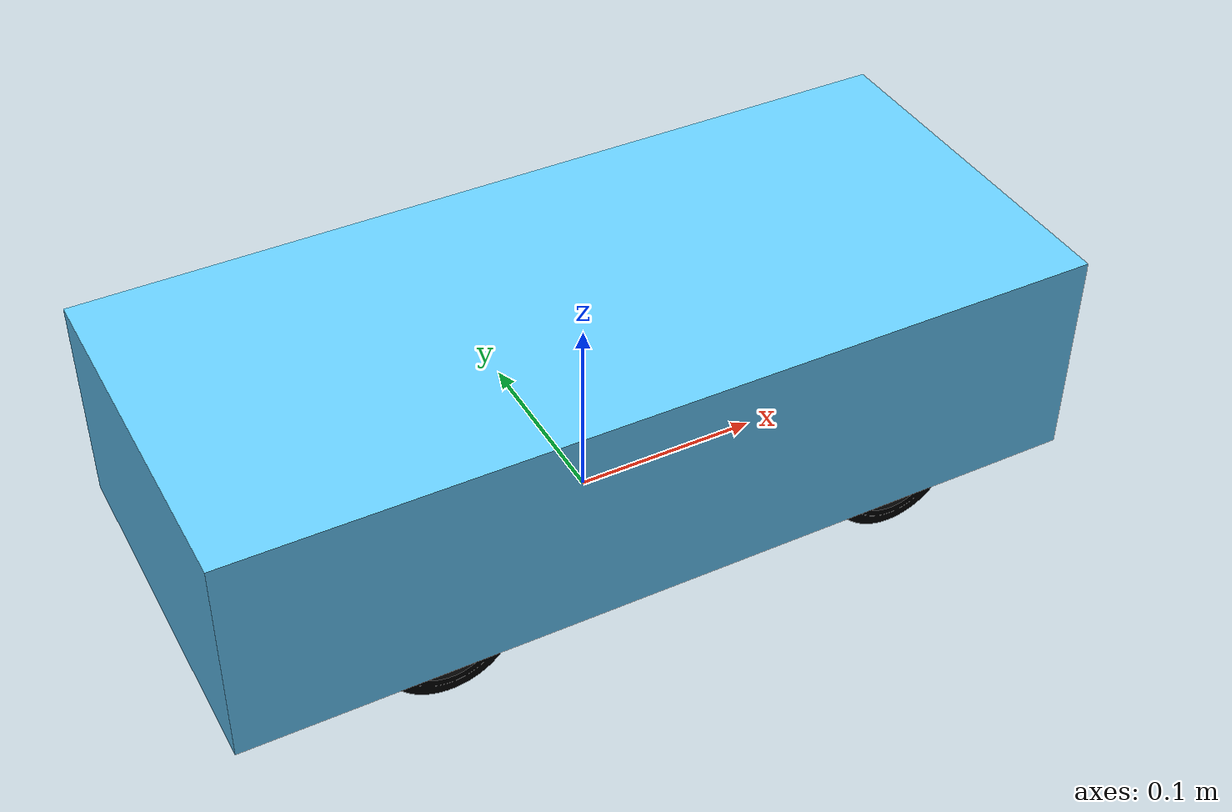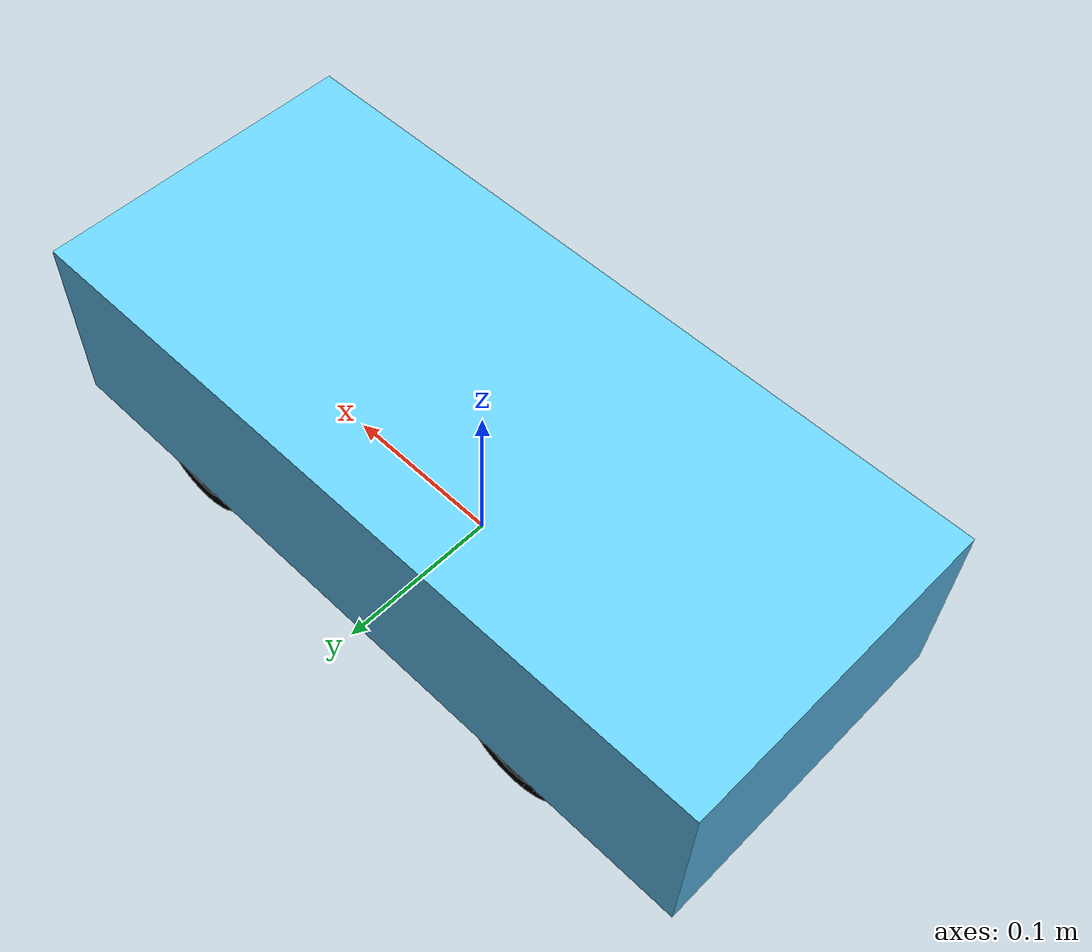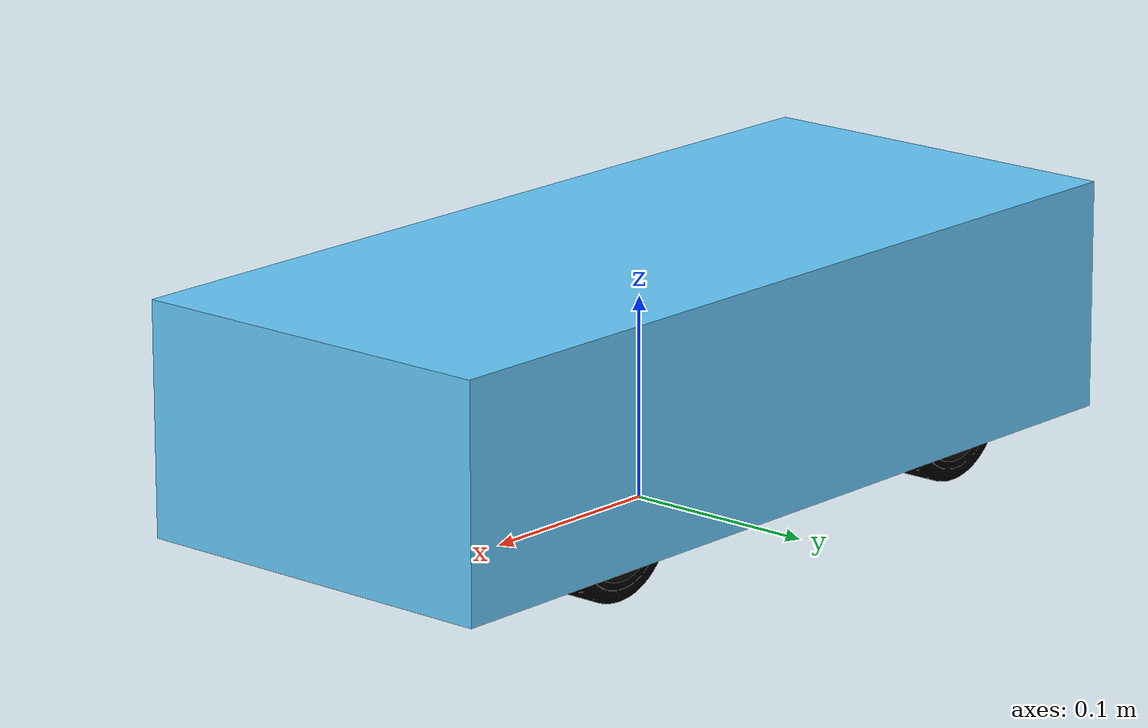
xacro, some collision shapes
<?xml version="1.0"?>
<robot xmlns:xacro="http://www.ros.org/wiki/xacro">

  <!-- ================= MATERIALES ================= -->
  <material name="black">
    <color rgba="0 0 0 1"/>
  </material>
  <material name="blue">
    <color rgba="0.4 0.8 1.0 1.0"/>
  </material>

  <!-- ================= PARÁMETROS ================= -->
  <!-- 0.001 porque los STL están en milímetros -->
  <xacro:property name="mesh_scale" value="0.001"/>
  <xacro:property name="pi_2" value="1.5707963"/>

  <!-- En tu CAD el frente del carro apunta a -Y. ROS/Gazebo quieren el frente en +X.
       Por eso la malla de la base y su inercia se giran +90° en Z. -->
  <xacro:property name="cad_yaw" value="1.5707963"/>

  <!-- Llantas (medidas del STL: diámetro 68.60 mm, ancho 25.78 mm).
       El centro de la llanta queda a 0.0713 - 0.037 = 0.0343 m del piso -->
  <xacro:property name="wheel_radius" value="0.0343"/>
  <xacro:property name="wheel_width"  value="0.02578"/>
  <xacro:property name="wheel_mass"   value="0.009"/>
  <xacro:property name="wheel_z"      value="-0.037"/>

  <!-- Posiciones ya en el marco ROS (x adelante, y izquierda).
       Salen de tus joints: x_ros = -y_cad, y_ros = x_cad -->
  <xacro:property name="front_x"    value="0.125"/>
  <xacro:property name="rear_x"     value="-0.12"/>
  <xacro:property name="half_track" value="0.0859"/>

  <!-- Base -->
  <xacro:property name="base_mass" value="1.2700"/>
  <xacro:property name="cm_cad_x" value="-0.0003"/>
  <xacro:property name="cm_cad_y" value="0.0049"/>
  <xacro:property name="cm_cad_z" value="-0.0207"/>

  <xacro:macro name="wheel_link" params="prefix mesh_file">
    <link name="${prefix}_wheel_link">
      <inertial>
        <origin xyz="0 0 0" rpy="0 0 0"/>
        <mass value="${wheel_mass}"/>
        <!-- Mismos valores de tu script, pero el mayor (7.409e-6) va en X porque
             el eje de la llanta en el STL es X. Los productos de inercia eran ~1e-10 -->
        <inertia ixx="7.40919338e-06" ixy="0" ixz="0"
                 iyy="4.16983255e-06" iyz="0"
                 izz="4.16901342e-06"/>
      </inertial>
      <visual>
        <origin xyz="0 0 0" rpy="0 0 0"/>
        <geometry>
          <mesh filename="${mesh_file}" scale="${mesh_scale} ${mesh_scale} ${mesh_scale}"/>
        </geometry>
        <material name="black"/>
      </visual>
      <!-- Cilindro en vez de malla: más estable y rápido en Gazebo.
           El cilindro nace con su eje en Z; el giro de 90° en Y lo pone en X, como la llanta -->
      <collision>
        <origin xyz="0 0 0" rpy="0 ${pi_2} 0"/>
        <geometry>
          <cylinder radius="${wheel_radius}" length="${wheel_width}"/>
        </geometry>
      </collision>
    </link>
    <gazebo reference="${prefix}_wheel_link">
      <mu1>1.0</mu1>
      <mu2>1.0</mu2>
    </gazebo>
  </xacro:macro>

  <!-- ================= MACRO: LLANTA TRASERA (tracción) ================= -->
  <xacro:macro name="rear_wheel" params="prefix mesh_file y">
    <xacro:wheel_link prefix="${prefix}" mesh_file="${mesh_file}"/>
    <joint name="${prefix}_wheel_joint" type="continuous">
      <parent link="base_link"/>
      <child link="${prefix}_wheel_link"/>
      <!-- Misma orientación que la base (yaw del CAD): el eje X de la llanta queda en +Y (lateral) -->
      <origin xyz="${rear_x} ${y} ${wheel_z}" rpy="0 0 ${cad_yaw}"/>
      <axis xyz="1 0 0"/>
      <dynamics damping="0.001" friction="0.0"/>
    </joint>
  </xacro:macro>

  <!-- ================= MACRO: LLANTA DELANTERA (dirección) ================= -->
  <xacro:macro name="front_wheel" params="prefix mesh_file y">
    <link name="${prefix}_steering_link">
      <inertial>
        <origin xyz="0 0 0" rpy="0 0 0"/>
        <mass value="0.01"/>
        <inertia ixx="1e-6" ixy="0" ixz="0" iyy="1e-6" iyz="0" izz="1e-6"/>
      </inertial>
    </link>
    <joint name="${prefix}_steering_joint" type="revolute">
      <parent link="base_link"/>
      <child link="${prefix}_steering_link"/>
      <origin xyz="${front_x} ${y} ${wheel_z}" rpy="0 0 0"/>
      <axis xyz="0 0 1"/>
      <limit lower="-0.8" upper="0.8" effort="5.0" velocity="5.0"/>
    </joint>

    <xacro:wheel_link prefix="${prefix}" mesh_file="${mesh_file}"/>
    <joint name="${prefix}_wheel_joint" type="continuous">
      <parent link="${prefix}_steering_link"/>
      <child link="${prefix}_wheel_link"/>
      <origin xyz="0 0 0" rpy="0 0 ${cad_yaw}"/>
      <axis xyz="1 0 0"/>
      <dynamics damping="0.001" friction="0.0"/>
    </joint>
  </xacro:macro>

  <!-- ================= BASE ================= -->
  <link name="base_footprint"/>

  <link name="base_link">
    <inertial>
      <origin xyz="${-cm_cad_y} ${cm_cad_x} ${cm_cad_z}" rpy="0 0 ${cad_yaw}"/>
      <mass value="${base_mass}"/>
      <inertia ixx="0.010070" ixy="0.000075" ixz="0.000016"
              iyy="0.001856" iyz="-0.000063"
              izz="0.010855"/>
    </inertial>
    <visual>
      <origin xyz="0 0 0" rpy="0 0 ${cad_yaw}"/>
      <geometry>
        <mesh filename="package://cuchak_description/meshes/base.stl"
              scale="${mesh_scale} ${mesh_scale} ${mesh_scale}"/>
      </geometry>
      <material name="blue"/>
    </visual>
    <collision>
      <origin xyz="0 0 0" rpy="0 0 0"/>
      <geometry>
        <box size="0.45364 0.19758 0.11505"/>
      </geometry>
    </collision>
  </link>

  <joint name="base_joint" type="fixed">
    <parent link="base_footprint"/>
    <child link="base_link"/>
    <origin xyz="0 0 0.0713" rpy="0 0 0"/>
  </joint>

  <xacro:front_wheel prefix="front_left"
      mesh_file="package://cuchak_description/meshes/llanta_derecha_trasera.stl"
      y="${half_track}"/>
  <xacro:front_wheel prefix="front_right"
      mesh_file="package://cuchak_description/meshes/llanta_izquierda_trasera.stl"
      y="${-half_track}"/>
  <xacro:rear_wheel prefix="rear_left"
      mesh_file="package://cuchak_description/meshes/llanta_derecha_trasera.stl"
      y="${half_track}"/>
  <xacro:rear_wheel prefix="rear_right"
      mesh_file="package://cuchak_description/meshes/llanta_izquierda_trasera.stl"
      y="${-half_track}"/>

</robot>
